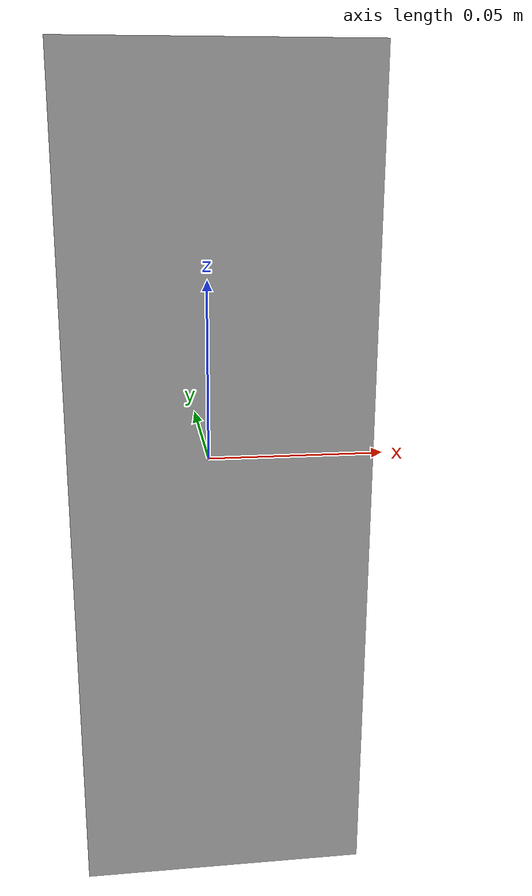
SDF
<?xml version='1.0'?>
<sdf version='1.6'>
  <model name='turtlebot3_cuboid_obstacle'>
    <model name='turtlebot3_cuboid_obstacle'>
      <link name='link'>
        <inertial>
          <mass>0.0301478</mass>
          <inertia>
            <ixx>0.000676251</ixx>
            <ixy>0</ixy>
            <ixz>0</ixz>
            <iyy>0.000680835</iyy>
            <iyz>0</iyz>
            <izz>0.000335937</izz>
          </inertia>
          <pose frame=''>0 0 0 0 -0 0</pose>
        </inertial>
        <self_collide>0</self_collide>
        <enable_wind>0</enable_wind>
        <kinematic>0</kinematic>
        <pose frame=''>0 0 0 0 -0 0</pose>
        <visual name='visual'>
          <geometry>
            <box>
              <size>0.075 0.075 0.215</size>
            </box>
          </geometry>
          <material>
            <script>
              <name>Gazebo/Grey</name>
              <uri>file://media/materials/scripts/gazebo.material</uri>
            </script>
          </material>
          <pose frame=''>0 0 0 0 -0 0</pose>
          <transparency>0</transparency>
          <cast_shadows>1</cast_shadows>
        </visual>
        <collision name='collision'>
          <laser_retro>0</laser_retro>
          <max_contacts>10</max_contacts>
          <pose frame=''>0 0 0 0 -0 0</pose>
          <geometry>
            <box>
              <size>0.075 0.075 0.215</size>
            </box>
          </geometry>
          <surface>
            <friction>
              <ode>
                <mu>1</mu>
                <mu2>1</mu2>
                <fdir1>0 0 0</fdir1>
                <slip1>0</slip1>
                <slip2>0</slip2>
              </ode>
              <torsional>
                <coefficient>1</coefficient>
                <patch_radius>0</patch_radius>
                <surface_radius>0</surface_radius>
                <use_patch_radius>1</use_patch_radius>
                <ode>
                  <slip>0</slip>
                </ode>
              </torsional>
            </friction>
            <bounce>
              <restitution_coefficient>0</restitution_coefficient>
              <threshold>1e+06</threshold>
            </bounce>
            <contact>
              <collide_without_contact>0</collide_without_contact>
              <collide_without_contact_bitmask>1</collide_without_contact_bitmask>
              <collide_bitmask>1</collide_bitmask>
              <ode>
                <soft_cfm>0</soft_cfm>
                <soft_erp>0.2</soft_erp>
                <kp>1e+13</kp>
                <kd>1</kd>
                <max_vel>0.01</max_vel>
                <min_depth>0</min_depth>
              </ode>
              <bullet>
                <split_impulse>1</split_impulse>
                <split_impulse_penetration_threshold>-0.01</split_impulse_penetration_threshold>
                <soft_cfm>0</soft_cfm>
                <soft_erp>0.2</soft_erp>
                <kp>1e+13</kp>
                <kd>1</kd>
              </bullet>
            </contact>
          </surface>
        </collision>
      </link>
      <static>0</static>
      <allow_auto_disable>1</allow_auto_disable>
      <pose frame=''>-0 0 0 0 -0 0</pose>
    </model>
    <static>1</static>
    <allow_auto_disable>1</allow_auto_disable>
  </model>
</sdf>
